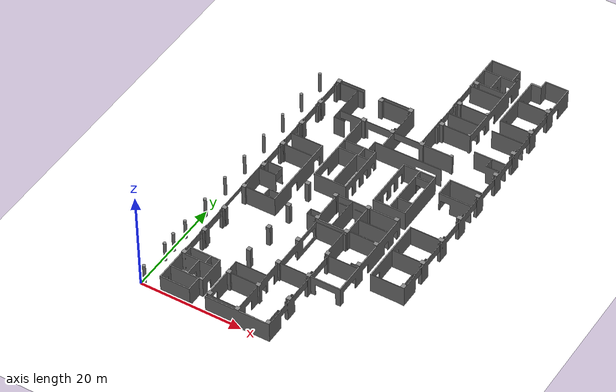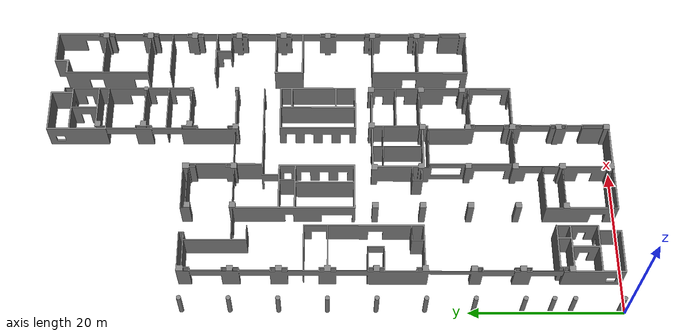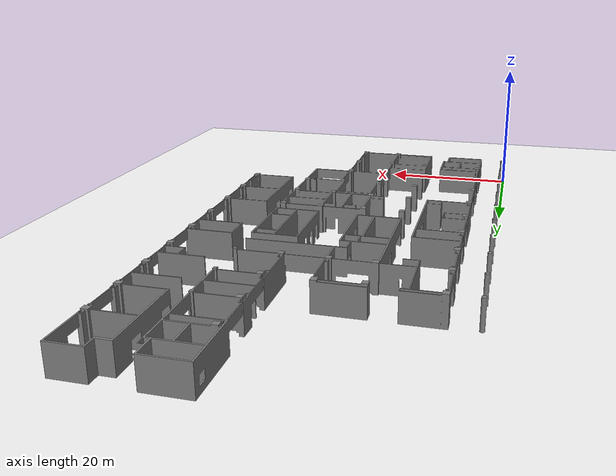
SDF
<?xml version="1.0" ?>
<sdf version="1.10">
  <world name="1f">

    <!-- Gz Sim required plugins -->
    <!-- Bullet Featherstone handles static mesh collision via BVH; DART crashed on the earlier 17k-face mesh -->
    <plugin name="gz::sim::systems::Physics" filename="gz-sim-physics-system">
      <engine>
        <filename>gz-physics7-bullet-featherstone-plugin</filename>
      </engine>
    </plugin>
    <plugin name="gz::sim::systems::UserCommands" filename="gz-sim-user-commands-system"/>
    <plugin name="gz::sim::systems::SceneBroadcaster" filename="gz-sim-scene-broadcaster-system"/>
    <plugin name="gz::sim::systems::Contact" filename="gz-sim-contact-system"/>
    <plugin name="gz::sim::systems::Sensors" filename="gz-sim-sensors-system">
      <render_engine>ogre2</render_engine>
    </plugin>

    <!-- Physics settings -->
    <physics name="4ms" type="ignored">
      <max_step_size>0.004</max_step_size>
      <real_time_factor>1.0</real_time_factor>
      <real_time_update_rate>250</real_time_update_rate>
    </physics>

    <gravity>0 0 -9.8</gravity>
    <atmosphere type="adiabatic"/>

    <scene>
      <ambient>0.4 0.4 0.4 1</ambient>
      <background>0.7 0.7 0.7 1</background>
      <shadows>true</shadows>
    </scene>

    <!-- Directional light (replaces model://sun) -->
    <light name="sun" type="directional">
      <cast_shadows>true</cast_shadows>
      <pose>0 0 10 0 0 0</pose>
      <diffuse>0.8 0.8 0.8 1</diffuse>
      <specular>0.2 0.2 0.2 1</specular>
      <direction>-0.5 0.1 -0.9</direction>
    </light>

    <!-- Floor plan ground plane — textured with 1F occupancy map -->
    <!-- Map: origin=(0.9107,-2.0), size=41.5x79.64m, center=(21.6607,37.82) -->
    <model name="ground_plane">
      <static>true</static>
      <link name="link">
        <collision name="collision">
          <geometry>
            <plane>
              <normal>0 0 1</normal>
              <size>41.5 79.64</size>
            </plane>
          </geometry>
          <surface>
            <friction>
              <!-- Bullet Featherstone treats this as spinning friction (SDF default 1.0), -->
              <!-- combined with the robot wheel value; anything but 0 locks the robot's yaw. -->
              <torsional>
                <coefficient>0</coefficient>
              </torsional>
              <ode>
                <mu>100</mu>
                <mu2>50</mu2>
              </ode>
            </friction>
          </surface>
        </collision>
        <visual name="visual">
          <cast_shadows>false</cast_shadows>
          <geometry>
            <plane>
              <normal>0 0 1</normal>
              <size>41.5 79.64</size>
            </plane>
          </geometry>
          <material>
            <ambient>1.0 1.0 1.0 1</ambient>
            <diffuse>1.0 1.0 1.0 1</diffuse>
            <pbr>
              <metal>
                <albedo_map>/home/jason/ros2_ws/src/spatial_maps/maps/1F_map_orig.png</albedo_map>
                <metalness>0.0</metalness>
                <roughness>1.0</roughness>
              </metal>
            </pbr>
          </material>
        </visual>
      </link>
      <pose>21.6607 37.82 -0.01 0 0 0</pose>
    </model>

    <!-- Hospital 1F walls: IfcWall + IfcColumn from the pipeline floor_1F.glb, visual and    -->
    <!-- collision. Generated by scripts/glb_to_wall_mesh.py in the same UCS frame as 1F.pgm, -->
    <!-- so there is no XY offset (100% of wall slice samples within 3 px of occupied cells). -->
    <!-- Mesh X=0.10-40.40, Y=0-75.62, wall base at model Z=0.                               -->
    <!-- Replaces the 1108 PGM-derived boxes (models/pgm_walls_1f). Non-structural PGM        -->
    <!-- obstacles (no IfcWall/IfcColumn) are in the costmap but have no collision.           -->
    <model name="hospital_1f_walls">
      <static>true</static>
      <link name="link">
        <collision name="collision">
          <geometry>
            <mesh>
              <uri>file:///home/jason/ros2_ws/src/spatial_maps/meshes/floor_1F_walls_only.obj</uri>
            </mesh>
          </geometry>
        </collision>
        <visual name="visual">
          <geometry>
            <mesh>
              <uri>file:///home/jason/ros2_ws/src/spatial_maps/meshes/floor_1F_walls_only.obj</uri>
            </mesh>
          </geometry>
          <!-- Material is driven by floor_1F_walls_only.mtl (grey_wall) -->
          <material>
            <ambient>0.5 0.5 0.5 1</ambient>
            <diffuse>0.5 0.5 0.5 1</diffuse>
            <specular>0.05 0.05 0.05 1</specular>
          </material>
        </visual>
      </link>
      <!-- Identity XY pose: the mesh is already in map coordinates. tz=-0.05 sinks the base -->
      <!-- slightly below the floor plane to avoid a visible seam.                           -->
      <pose>0 0 -0.05 0 0 0</pose>
    </model>

    <!-- Invisible perimeter fence: collision-only walls 1 m outside each PGM map edge.     -->
    <!-- Map edges: x=0.91..42.41, y=−2.0..77.64 → fence at x=−0.1/43.4, y=−3.0/78.6.   -->
    <!-- Prevents the robot from physically escaping the map area through any gap.            -->
    <!-- No visual element = invisible in Gazebo. LiDAR may see them at map edges (harmless  -->
    <!-- since costmaps are static-layer only; no obstacle_layer).                           -->
    <model name="fence_west">
      <static>true</static>
      <link name="link">
        <collision name="col">
          <geometry><box><size>0.2 82.0 3.0</size></box></geometry>
        </collision>
      </link>
      <pose>-0.1 37.8 1.5 0 0 0</pose>
    </model>
    <model name="fence_east">
      <static>true</static>
      <link name="link">
        <collision name="col">
          <geometry><box><size>0.2 82.0 3.0</size></box></geometry>
        </collision>
      </link>
      <pose>43.4 37.8 1.5 0 0 0</pose>
    </model>
    <model name="fence_south">
      <static>true</static>
      <link name="link">
        <collision name="col">
          <geometry><box><size>44.0 0.2 3.0</size></box></geometry>
        </collision>
      </link>
      <pose>21.65 -3.0 1.5 0 0 0</pose>
    </model>
    <model name="fence_north">
      <static>true</static>
      <link name="link">
        <collision name="col">
          <geometry><box><size>44.0 0.2 3.0</size></box></geometry>
        </collision>
      </link>
      <pose>21.65 78.6 1.5 0 0 0</pose>
    </model>

    <!-- The 1108 PGM-derived collision boxes (model://pgm_walls_1f, generated by     -->
    <!-- pgm_to_sdf_walls.py) are no longer included: hospital_1f_walls above carries -->

  </world>
</sdf>
